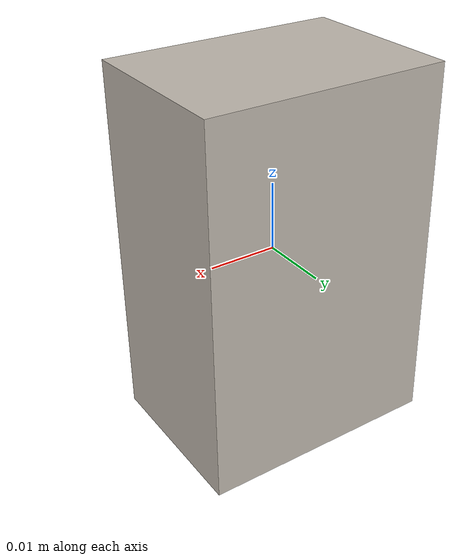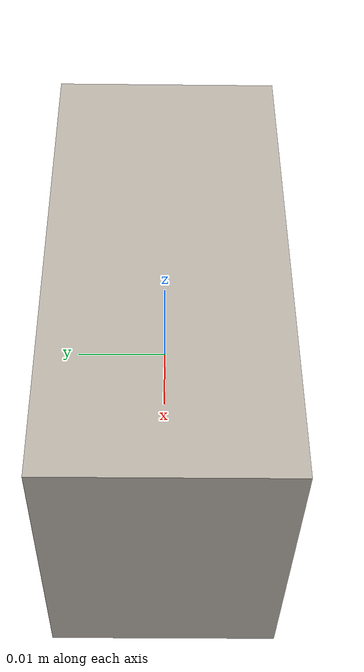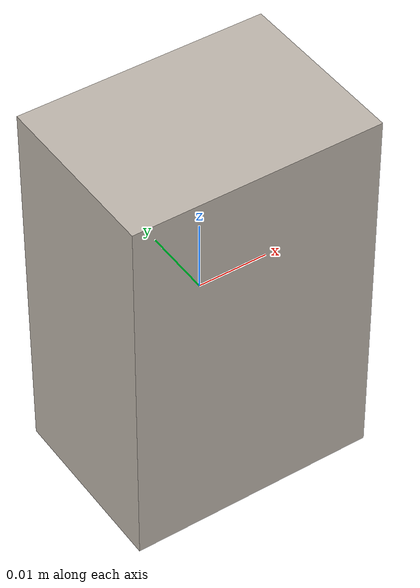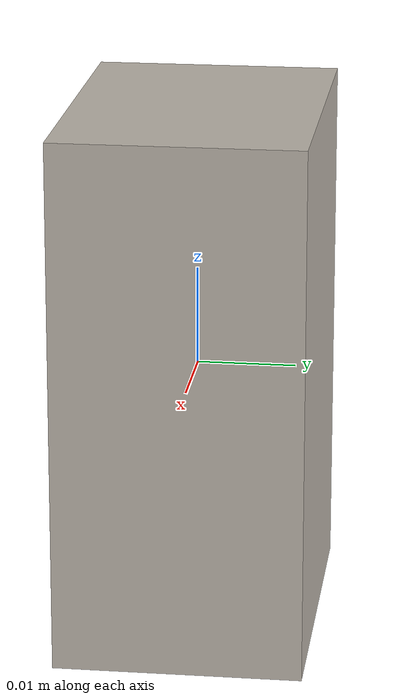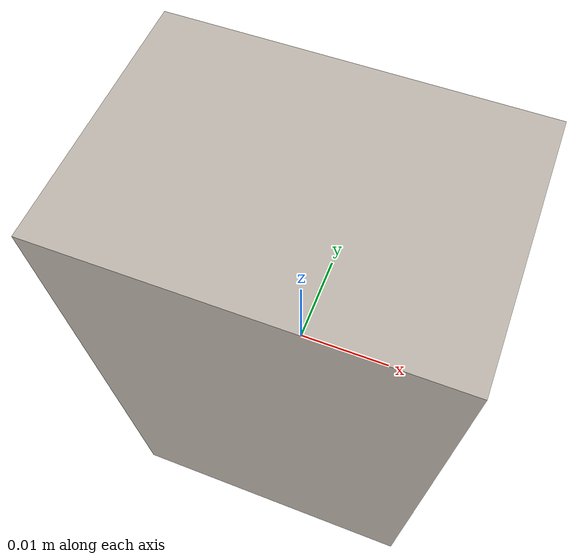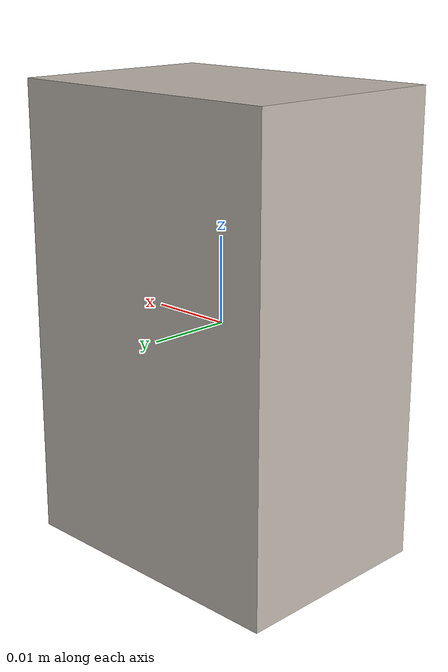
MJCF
<mujoco model="cereal">
  <asset>
    <texture type="cube" file="textures/boxes/cheezeits.png" rgb1="1 1 1" name="tex-cereal"/>
    <material name="cereal" reflectance="0.5" texrepeat="3 3" texture="tex-cereal" texuniform="false"/>
  </asset>
  <worldbody>
    <body>
      <body name="object">
        <geom pos="0 0 0" size="0.0175 0.0125 0.027" type="box" solimp="0.998 0.998 0.001" solref="0.001 1" density="150" friction="0.95 0.3 0.1" material="cereal" group="1" condim="4"/>
      </body>
      <site rgba="0 0 0 0" size="0.005" pos="0 0 -0.05" name="bottom_site"/>
      <site rgba="0 0 0 0" size="0.005" pos="0 0 0.03" name="top_site"/>
      <site rgba="0 0 0 0" size="0.005" pos="0.06 0.06 0" name="horizontal_radius_site"/>
    </body>
  </worldbody>
</mujoco>
